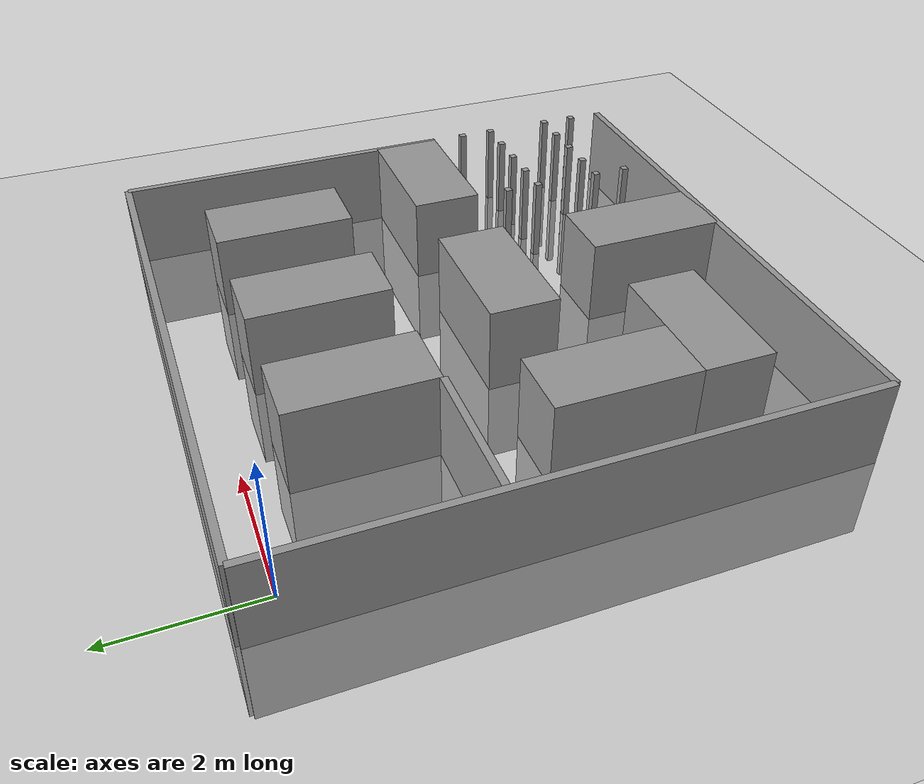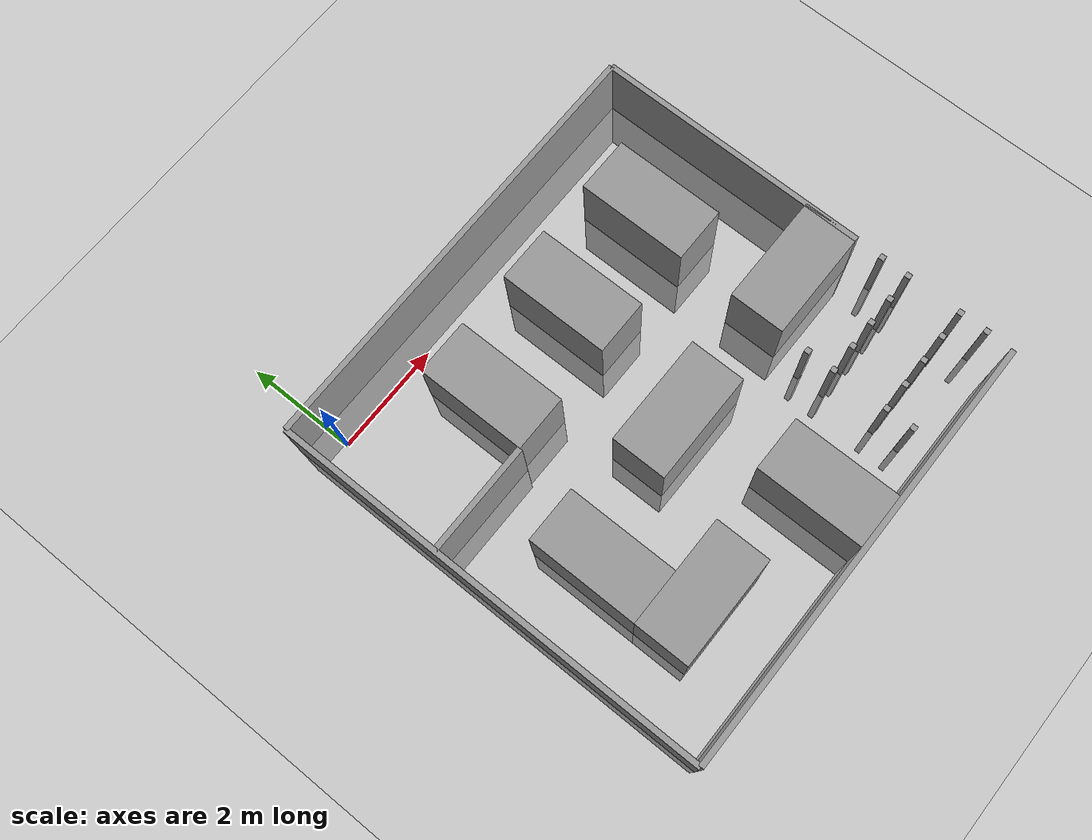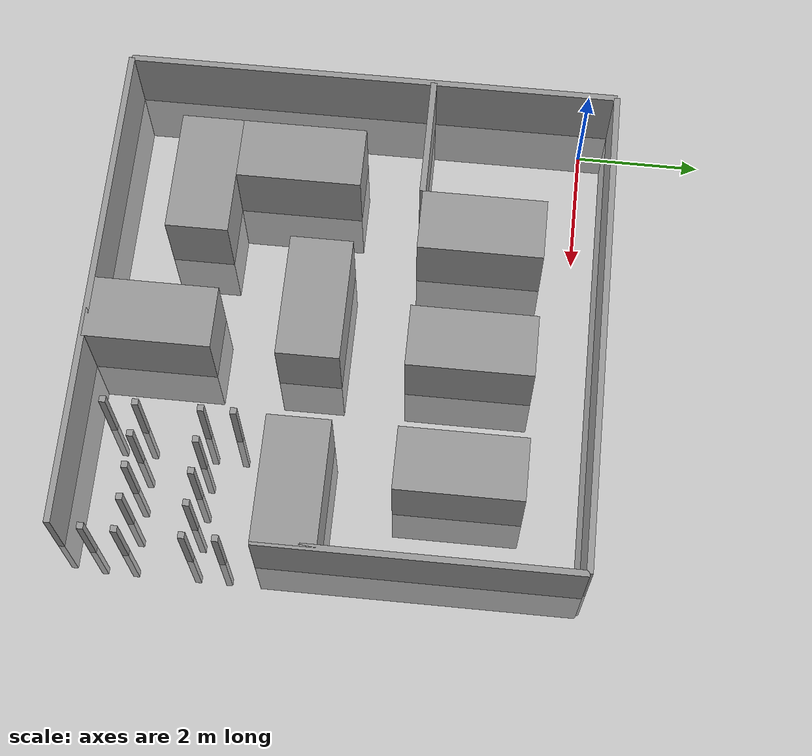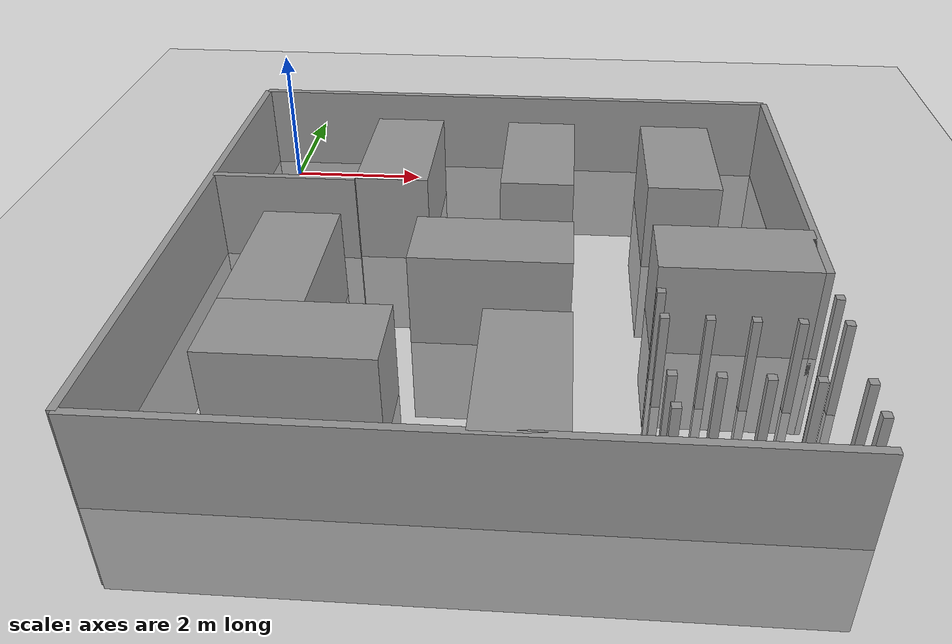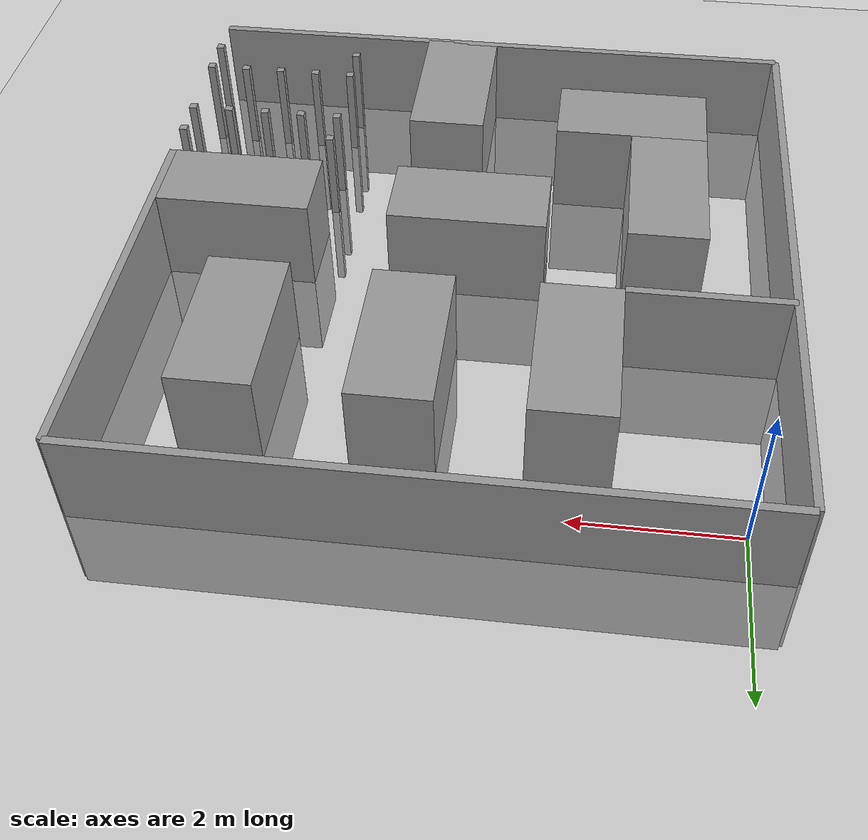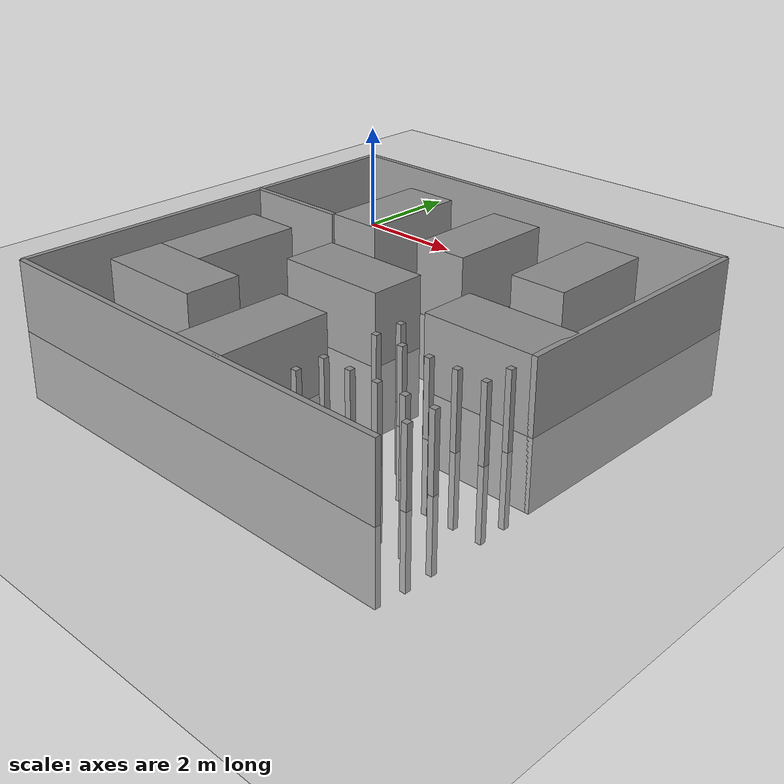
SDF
<?xml version="1.0" ?>
<sdf version="1.5">
  <world name="default">
    <gui>
      <camera name="user_camera">
        <pose>0 0 10 0 1.57079632679 0</pose>
      </camera>
    </gui>
    <include>
      <uri>model://ground_plane</uri>
    </include>
    <include>
      <uri>model://sun</uri>
    </include>
    <include>
      <uri>model://RFMaze</uri>
    </include>
  </world>
</sdf>

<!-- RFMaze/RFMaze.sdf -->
<sdf version='1.6'>
  <model name='RFMaze'>
    <link name='Wall_0'>
      <collision name='col'>
        <geometry>
          <box>
            <size>8 0.1 2.5</size>
          </box>
        </geometry>
      </collision>
      <visual name='vis'>
        <geometry>
          <box>
            <size>8 0.1 2.5</size>
          </box>
        </geometry>
        <material>
          <script>
            <uri>file://media/materials/scripts/gazebo.material</uri>
            <name>Gazebo/Grey</name>
          </script>
          <ambient>1 1 1 1</ambient>
        </material>
      </visual>
      <pose>0 4 0 0 0 0</pose>
    </link>
    <link name='Wall_1'>
      <collision name='col'>
        <geometry>
          <box>
            <size>8 0.1 2.5</size>
          </box>
        </geometry>
      </collision>
      <visual name='vis'>
        <geometry>
          <box>
            <size>8 0.1 2.5</size>
          </box>
        </geometry>
        <material>
          <script>
            <uri>file://media/materials/scripts/gazebo.material</uri>
            <name>Gazebo/Grey</name>
          </script>
          <ambient>1 1 1 1</ambient>
        </material>
      </visual>
      <pose>-4 0 0 0 0 1.57079632679</pose>
    </link>
    <link name='Wall_2'>
      <collision name='col'>
        <geometry>
          <box>
            <size>2 0.1 2.5</size>
          </box>
        </geometry>
      </collision>
      <visual name='vis'>
        <geometry>
          <box>
            <size>2 0.1 2.5</size>
          </box>
        </geometry>
        <material>
          <script>
            <uri>file://media/materials/scripts/gazebo.material</uri>
            <name>Gazebo/Grey</name>
          </script>
          <ambient>1 1 1 1</ambient>
        </material>
      </visual>
      <pose>-3 1 0 0 0 0</pose>
    </link>
    <link name='Wall_3'>
      <collision name='col'>
        <geometry>
          <box>
            <size>8 0.1 2.5</size>
          </box>
        </geometry>
      </collision>
      <visual name='vis'>
        <geometry>
          <box>
            <size>8 0.1 2.5</size>
          </box>
        </geometry>
        <material>
          <script>
            <uri>file://media/materials/scripts/gazebo.material</uri>
            <name>Gazebo/Grey</name>
          </script>
          <ambient>1 1 1 1</ambient>
        </material>
      </visual>
      <pose>0 -4 0 0 0 0</pose>
    </link>
    <link name='Wall_4'>
      <collision name='col'>
        <geometry>
          <box>
            <size>5 0.1 2.5</size>
          </box>
        </geometry>
      </collision>
      <visual name='vis'>
        <geometry>
          <box>
            <size>5 0.1 2.5</size>
          </box>
        </geometry>
        <material>
          <script>
            <uri>file://media/materials/scripts/gazebo.material</uri>
            <name>Gazebo/Grey</name>
          </script>
          <ambient>1 1 1 1</ambient>
        </material>
      </visual>
      <pose>4 1.5 0 0 0 1.57079632679</pose>
    </link>
    <link name='BoxH_0'>
      <collision name='col'>
        <geometry>
          <box>
            <size>2 1 2.5</size>
          </box>
        </geometry>
      </collision>
      <visual name='vis'>
        <geometry>
          <box>
            <size>2 1 2.5</size>
          </box>
        </geometry>
        <material>
          <script>
            <uri>file://media/materials/scripts/gazebo.material</uri>
            <name>Gazebo/Grey</name>
          </script>
          <ambient>1 1 1 1</ambient>
        </material>
      </visual>
      <pose>0 -0.5 0 0 0 0</pose>
    </link>
    <link name='BoxH_1'>
      <collision name='col'>
        <geometry>
          <box>
            <size>2 1 2.5</size>
          </box>
        </geometry>
      </collision>
      <visual name='vis'>
        <geometry>
          <box>
            <size>2 1 2.5</size>
          </box>
        </geometry>
        <material>
          <script>
            <uri>file://media/materials/scripts/gazebo.material</uri>
            <name>Gazebo/Grey</name>
          </script>
          <ambient>1 1 1 1</ambient>
        </material>
      </visual>
      <pose>3 -0.5 0 0 0 0</pose>
    </link>
    <link name='BoxV_2'>
      <collision name='col'>
        <geometry>
          <box>
            <size>1 2 2.5</size>
          </box>
        </geometry>
      </collision>
      <visual name='vis'>
        <geometry>
          <box>
            <size>1 2 2.5</size>
          </box>
        </geometry>
        <material>
          <script>
            <uri>file://media/materials/scripts/gazebo.material</uri>
            <name>Gazebo/Grey</name>
          </script>
          <ambient>1 1 1 1</ambient>
        </material>
      </visual>
      <pose>0.5 2 0 0 0 0</pose>
    </link>
    <link name='BoxV_3'>
      <collision name='col'>
        <geometry>
          <box>
            <size>1 2 2.5</size>
          </box>
        </geometry>
      </collision>
      <visual name='vis'>
        <geometry>
          <box>
            <size>1 2 2.5</size>
          </box>
        </geometry>
        <material>
          <script>
            <uri>file://media/materials/scripts/gazebo.material</uri>
            <name>Gazebo/Grey</name>
          </script>
          <ambient>1 1 1 1</ambient>
        </material>
      </visual>
      <pose>-1.5 2 0 0 0 0</pose>
    </link>
    <link name='BoxV_4'>
      <collision name='col'>
        <geometry>
          <box>
            <size>1 2 2.5</size>
          </box>
        </geometry>
      </collision>
      <visual name='vis'>
        <geometry>
          <box>
            <size>1 2 2.5</size>
          </box>
        </geometry>
        <material>
          <script>
            <uri>file://media/materials/scripts/gazebo.material</uri>
            <name>Gazebo/Grey</name>
          </script>
          <ambient>1 1 1 1</ambient>
        </material>
      </visual>
      <pose>2.5 2 0 0 0 0</pose>
    </link>
    <link name='BoxV_5'>
      <collision name='col'>
        <geometry>
          <box>
            <size>1 2 2.5</size>
          </box>
        </geometry>
      </collision>
      <visual name='vis'>
        <geometry>
          <box>
            <size>1 2 2.5</size>
          </box>
        </geometry>
        <material>
          <script>
            <uri>file://media/materials/scripts/gazebo.material</uri>
            <name>Gazebo/Grey</name>
          </script>
          <ambient>1 1 1 1</ambient>
        </material>
      </visual>
      <pose>-2.5 -1 0 0 0 0</pose>
    </link>
    <link name='BoxV_6'>
      <collision name='col'>
        <geometry>
          <box>
            <size>1 2 2.5</size>
          </box>
        </geometry>
      </collision>
      <visual name='vis'>
        <geometry>
          <box>
            <size>1 2 2.5</size>
          </box>
        </geometry>
        <material>
          <script>
            <uri>file://media/materials/scripts/gazebo.material</uri>
            <name>Gazebo/Grey</name>
          </script>
          <ambient>1 1 1 1</ambient>
        </material>
      </visual>
      <pose>0.5 -3 0 0 0 0</pose>
    </link>
    <link name='BoxH_7'>
      <collision name='col'>
        <geometry>
          <box>
            <size>2 1 2.5</size>
          </box>
        </geometry>
      </collision>
      <visual name='vis'>
        <geometry>
          <box>
            <size>2 1 2.5</size>
          </box>
        </geometry>
        <material>
          <script>
            <uri>file://media/materials/scripts/gazebo.material</uri>
            <name>Gazebo/Grey</name>
          </script>
          <ambient>1 1 1 1</ambient>
        </material>
      </visual>
      <pose>-2 -2.5 0 0 0 0</pose>
    </link>
    <link name='Column_0'>
      <collision name='col'>
        <geometry>
          <box>
            <size>0.1 0.1 2.5</size>
          </box>
        </geometry>
      </collision>
      <visual name='vis'>
        <geometry>
          <box>
            <size>0.1 0.1 2.5</size>
          </box>
        </geometry>
        <material>
          <script>
            <uri>file://media/materials/scripts/gazebo.material</uri>
            <name>Gazebo/Grey</name>
          </script>
          <ambient>1 1 1 1</ambient>
        </material>
      </visual>
      <pose>2 -1.5 0 0 0 0</pose>
    </link>
    <link name='Column_1'>
      <collision name='col'>
        <geometry>
          <box>
            <size>0.1 0.1 2.5</size>
          </box>
        </geometry>
      </collision>
      <visual name='vis'>
        <geometry>
          <box>
            <size>0.1 0.1 2.5</size>
          </box>
        </geometry>
        <material>
          <script>
            <uri>file://media/materials/scripts/gazebo.material</uri>
            <name>Gazebo/Grey</name>
          </script>
          <ambient>1 1 1 1</ambient>
        </material>
      </visual>
      <pose>2 -2 0 0 0 0</pose>
    </link>
    <link name='Column_2'>
      <collision name='col'>
        <geometry>
          <box>
            <size>0.1 0.1 2.5</size>
          </box>
        </geometry>
      </collision>
      <visual name='vis'>
        <geometry>
          <box>
            <size>0.1 0.1 2.5</size>
          </box>
        </geometry>
        <material>
          <script>
            <uri>file://media/materials/scripts/gazebo.material</uri>
            <name>Gazebo/Grey</name>
          </script>
          <ambient>1 1 1 1</ambient>
        </material>
      </visual>
      <pose>2.5 -2 0 0 0 0</pose>
    </link>
    <link name='Column_3'>
      <collision name='col'>
        <geometry>
          <box>
            <size>0.1 0.1 2.5</size>
          </box>
        </geometry>
      </collision>
      <visual name='vis'>
        <geometry>
          <box>
            <size>0.1 0.1 2.5</size>
          </box>
        </geometry>
        <material>
          <script>
            <uri>file://media/materials/scripts/gazebo.material</uri>
            <name>Gazebo/Grey</name>
          </script>
          <ambient>1 1 1 1</ambient>
        </material>
      </visual>
      <pose>3 -2 0 0 0 0</pose>
    </link>
    <link name='Column_4'>
      <collision name='col'>
        <geometry>
          <box>
            <size>0.1 0.1 2.5</size>
          </box>
        </geometry>
      </collision>
      <visual name='vis'>
        <geometry>
          <box>
            <size>0.1 0.1 2.5</size>
          </box>
        </geometry>
        <material>
          <script>
            <uri>file://media/materials/scripts/gazebo.material</uri>
            <name>Gazebo/Grey</name>
          </script>
          <ambient>1 1 1 1</ambient>
        </material>
      </visual>
      <pose>3.5 -2 0 0 0 0</pose>
    </link>
    <link name='Column_5'>
      <collision name='col'>
        <geometry>
          <box>
            <size>0.1 0.1 2.5</size>
          </box>
        </geometry>
      </collision>
      <visual name='vis'>
        <geometry>
          <box>
            <size>0.1 0.1 2.5</size>
          </box>
        </geometry>
        <material>
          <script>
            <uri>file://media/materials/scripts/gazebo.material</uri>
            <name>Gazebo/Grey</name>
          </script>
          <ambient>1 1 1 1</ambient>
        </material>
      </visual>
      <pose>4 -2 0 0 0 0</pose>
    </link>
    <link name='Column_6'>
      <collision name='col'>
        <geometry>
          <box>
            <size>0.1 0.1 2.5</size>
          </box>
        </geometry>
      </collision>
      <visual name='vis'>
        <geometry>
          <box>
            <size>0.1 0.1 2.5</size>
          </box>
        </geometry>
        <material>
          <script>
            <uri>file://media/materials/scripts/gazebo.material</uri>
            <name>Gazebo/Grey</name>
          </script>
          <ambient>1 1 1 1</ambient>
        </material>
      </visual>
      <pose>4 -1.5 0 0 0 0</pose>
    </link>

    <link name='Column_7'>
      <collision name='col'>
        <geometry>
          <box>
            <size>0.1 0.1 2.5</size>
          </box>
        </geometry>
      </collision>
      <visual name='vis'>
        <geometry>
          <box>
            <size>0.1 0.1 2.5</size>
          </box>
        </geometry>
        <material>
          <script>
            <uri>file://media/materials/scripts/gazebo.material</uri>
            <name>Gazebo/Grey</name>
          </script>
          <ambient>1 1 1 1</ambient>
        </material>
      </visual>
      <pose>2 -3.5 0 0 0 0</pose>
    </link>
    <link name='Column_8'>
      <collision name='col'>
        <geometry>
          <box>
            <size>0.1 0.1 2.5</size>
          </box>
        </geometry>
      </collision>
      <visual name='vis'>
        <geometry>
          <box>
            <size>0.1 0.1 2.5</size>
          </box>
        </geometry>
        <material>
          <script>
            <uri>file://media/materials/scripts/gazebo.material</uri>
            <name>Gazebo/Grey</name>
          </script>
          <ambient>1 1 1 1</ambient>
        </material>
      </visual>
      <pose>2 -3 0 0 0 0</pose>
    </link>
    <link name='Column_9'>
      <collision name='col'>
        <geometry>
          <box>
            <size>0.1 0.1 2.5</size>
          </box>
        </geometry>
      </collision>
      <visual name='vis'>
        <geometry>
          <box>
            <size>0.1 0.1 2.5</size>
          </box>
        </geometry>
        <material>
          <script>
            <uri>file://media/materials/scripts/gazebo.material</uri>
            <name>Gazebo/Grey</name>
          </script>
          <ambient>1 1 1 1</ambient>
        </material>
      </visual>
      <pose>2.5 -3 0 0 0 0</pose>
    </link>
    <link name='Column_10'>
      <collision name='col'>
        <geometry>
          <box>
            <size>0.1 0.1 2.5</size>
          </box>
        </geometry>
      </collision>
      <visual name='vis'>
        <geometry>
          <box>
            <size>0.1 0.1 2.5</size>
          </box>
        </geometry>
        <material>
          <script>
            <uri>file://media/materials/scripts/gazebo.material</uri>
            <name>Gazebo/Grey</name>
          </script>
          <ambient>1 1 1 1</ambient>
        </material>
      </visual>
      <pose>3 -3 0 0 0 0</pose>
    </link>
    <link name='Column_11'>
      <collision name='col'>
        <geometry>
          <box>
            <size>0.1 0.1 2.5</size>
          </box>
        </geometry>
      </collision>
      <visual name='vis'>
        <geometry>
          <box>
            <size>0.1 0.1 2.5</size>
          </box>
        </geometry>
        <material>
          <script>
            <uri>file://media/materials/scripts/gazebo.material</uri>
            <name>Gazebo/Grey</name>
          </script>
          <ambient>1 1 1 1</ambient>
        </material>
      </visual>
      <pose>3.5 -3 0 0 0 0</pose>
    </link>
    <link name='Column_12'>
      <collision name='col'>
        <geometry>
          <box>
            <size>0.1 0.1 2.5</size>
          </box>
        </geometry>
      </collision>
      <visual name='vis'>
        <geometry>
          <box>
            <size>0.1 0.1 2.5</size>
          </box>
        </geometry>
        <material>
          <script>
            <uri>file://media/materials/scripts/gazebo.material</uri>
            <name>Gazebo/Grey</name>
          </script>
          <ambient>1 1 1 1</ambient>
        </material>
      </visual>
      <pose>4 -3 0 0 0 0</pose>
    </link>
    <link name='Column_13'>
      <collision name='col'>
        <geometry>
          <box>
            <size>0.1 0.1 2.5</size>
          </box>
        </geometry>
      </collision>
      <visual name='vis'>
        <geometry>
          <box>
            <size>0.1 0.1 2.5</size>
          </box>
        </geometry>
        <material>
          <script>
            <uri>file://media/materials/scripts/gazebo.material</uri>
            <name>Gazebo/Grey</name>
          </script>
          <ambient>1 1 1 1</ambient>
        </material>
      </visual>
      <pose>4 -3.5 0 0 0 0</pose>
    </link>
    <static>1</static>
    <pose>3.5 -3.5 0 0 0 0</pose>
  </model>
</sdf>
